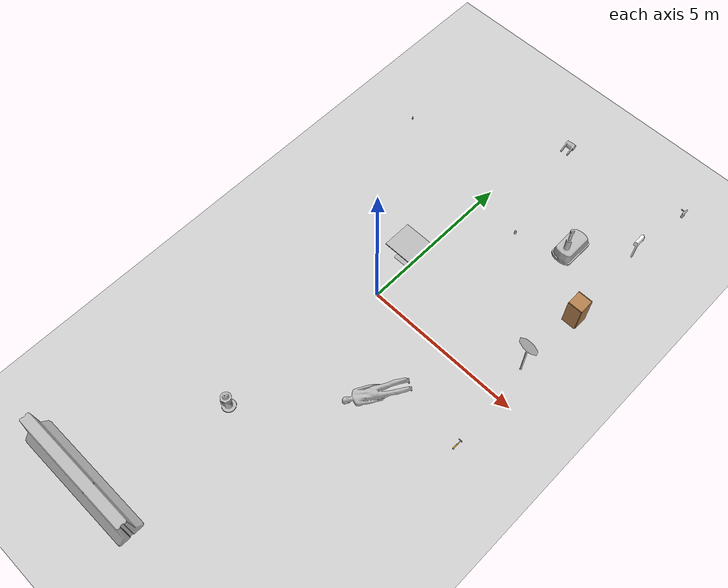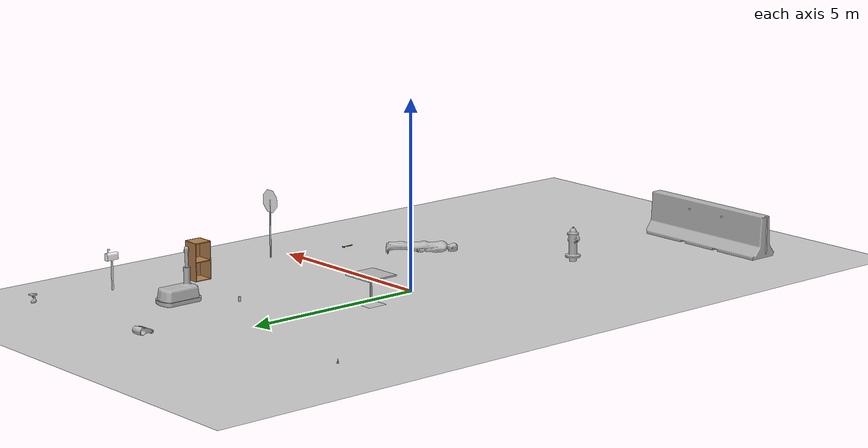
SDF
<sdf version="1.6">
 <world name="default">
  <light name="sun" type="directional">
   <pose>0 0 15 0 -0 0</pose>
   <diffuse>1 1 1 1</diffuse>
   <specular>0.1 0.1 0.1 1</specular>
   <attenuation>
    <range>1000</range>
    <constant>0.9</constant>
    <linear>0.01</linear>
    <quadratic>0.001</quadratic>
   </attenuation>
   <direction>-0.5 0.5 -1</direction>
  </light>
  <model name="ground_plane">
   <static>1</static>
   <link name="link">
    <collision name="collision">
     <geometry><plane><normal>0 0 1</normal><size>100 100</size></plane></geometry>
     <surface><friction><ode><mu>100</mu><mu2>50</mu2></ode></friction></surface>
    </collision>
    <visual name="visual">
     <transparency>1</transparency>
     <cast_shadows>0</cast_shadows>
     <geometry><plane><normal>0 0 1</normal><size>100 100</size></plane></geometry>
     <material>
      <script><uri>file://media/materials/scripts/gazebo.material</uri><name>Gazebo/Grey</name></script>
     </material>
    </visual>
   </link>
  </model>
  <gravity>0 0 -9.8</gravity>
  <magnetic_field>6e-06 2.3e-05 -4.2e-05</magnetic_field>
  <atmosphere type="adiabatic"/>
  <physics name="default_physics" default="0" type="ode">
   <max_step_size>0.001</max_step_size>
   <real_time_factor>1</real_time_factor>
   <real_time_update_rate>1000</real_time_update_rate>
  </physics>
  <scene><ambient>0.4 0.4 0.4 1</ambient><background>0.7 0.7 0.7 1</background><shadows>1</shadows></scene>
  <spherical_coordinates>
   <surface_model>EARTH_WGS84</surface_model>
   <latitude_deg>0</latitude_deg>
   <longitude_deg>0</longitude_deg>
   <elevation>0</elevation>
   <heading_deg>0</heading_deg>
  </spherical_coordinates>
  <model name="cafe_table">
   <static>1</static>
   <link name="link">
    <collision name="surface">
     <pose>0 0 0.755 0 -0 0</pose>
     <geometry><box><size>0.913 0.913 0.04</size></box></geometry>
    </collision>
    <collision name="column">
     <pose>0 0 0.37 0 -0 0</pose>
     <geometry><box><size>0.042 0.042 0.74</size></box></geometry>
    </collision>
    <collision name="base">
     <pose>0 0 0.02 0 -0 0</pose>
     <geometry><box><size>0.56 0.56 0.04</size></box></geometry>
    </collision>
    <visual name="visual">
     <geometry><mesh><uri>model://cafe_table/meshes/cafe_table.dae</uri><scale>1 1 1</scale></mesh></geometry>
    </visual>
   </link>
   <pose>-0.257593 1.54556 0 0 -0 0</pose>
  </model>
  <model name="fire_hydrant">
   <static>1</static>
   <link name="link">
    <collision name="collision">
     <geometry><mesh><uri>model://fire_hydrant/meshes/fire_hydrant.dae</uri><scale>1 1 1</scale></mesh></geometry>
    </collision>
    <visual name="visual">
     <geometry><mesh><uri>model://fire_hydrant/meshes/fire_hydrant.dae</uri><scale>1 1 1</scale></mesh></geometry>
    </visual>
   </link>
   <pose>-0.471273 -5.28042 0 0 -0 0</pose>
  </model>
  <model name="jersey_barrier">
   <static>1</static>
   <link name="link">
    <visual name="visual">
     <geometry>
      <mesh><uri>model://jersey_barrier/meshes/jersey_barrier.dae</uri><scale>1 1 1</scale></mesh>
     </geometry>
    </visual>
    <collision name="upright">
     <pose>0 0 0.5715 0 -0 0</pose>
     <geometry><box><size>4.06542 0.3063 1.143</size></box></geometry>
    </collision>
    <collision name="base">
     <pose>0 0 0.032258 0 -0 0</pose>
     <geometry><box><size>4.06542 0.8107 0.064516</size></box></geometry>
    </collision>
    <collision name="base2">
     <pose>0 0 0.1 0 -0 0</pose>
     <geometry><box><size>4.06542 0.65 0.1</size></box></geometry>
    </collision>
    <collision name="base3">
     <pose>0 0 0.2 0 -0 0</pose>
     <geometry><box><size>4.06542 0.5 0.1</size></box></geometry>
    </collision>
    <collision name="left-angle">
     <pose>0 -0.224 0.2401 0.9 -0 0</pose>
     <geometry><box><size>4.06542 0.5 0.064516</size></box></geometry>
    </collision>
    <collision name="right-angle">
     <pose>0 0.224 0.2401 -0.9 0 0</pose>
     <geometry><box><size>4.06542 0.5 0.064516</size></box></geometry>
    </collision>
   </link>
   <pose>-1.6295 -9.31876 0 0 -0 0</pose>
  </model>
  <model name="person_standing_0">
   <link name="link">
    <inertial>
     <pose>0 -0.1 0.95 0 -0 0</pose>
     <mass>80</mass>
     <inertia><ixx>24.88</ixx><ixy>0</ixy><ixz>0</ixz><iyy>25.73</iyy><iyz>0</iyz><izz>2.48</izz></inertia>
    </inertial>
    <collision name="bottom">
     <pose>0 -0.1 0.01 0 -0 0</pose>
     <geometry><box><size>0.5 0.35 0.02</size></box></geometry>
    </collision>
    <collision name="person">
     <pose>0 0 0.02 0.04 -0 0</pose>
     <geometry><mesh><uri>model://person_standing/meshes/standing.dae</uri><scale>1 1 1</scale></mesh></geometry>
    </collision>
    <visual name="visual">
     <pose>0 0 0.02 0.04 -0 0</pose>
     <geometry><mesh><uri>model://person_standing/meshes/standing.dae</uri><scale>1 1 1</scale></mesh></geometry>
    </visual>
   </link>
   <pose>2.69109 -1.46373 0.465146 1.59085 -0 -0.545982</pose>
  </model>
  <model name="Mailbox">
   <link name="link">
    <collision name="collision">
     <geometry><mesh><uri>model://mailbox/meshes/mailbox.dae</uri><scale>1 1 1</scale></mesh></geometry>
    </collision>
    <visual name="visual">
     <geometry><mesh><uri>model://mailbox/meshes/mailbox.dae</uri><scale>1 1 1</scale></mesh></geometry>
     <material>
      <script>
       <uri>model://mailbox/materials/scripts</uri>
       <uri>model://mailbox/materials/textures</uri>
       <name>Mailbox/Diffuse</name>
      </script>
     </material>
    </visual>
    <inertial>
     <inertia><ixx>1</ixx><ixy>0</ixy><ixz>0</ixz><iyy>1</iyy><iyz>0</iyz><izz>1</izz></inertia>
     <mass>1</mass>
    </inertial>
   </link>
   <pose>4.52359 6.05654 0.1898 5e-06 -2e-06 -1.5e-05</pose>
  </model>
  <model name="drill">
   <link name="link">
    <inertial>
     <pose>-0.00637 -0.008 0.13254 0 -0 0</pose>
     <inertia>
      <ixx>0.0133113</ixx>
      <ixy>-0.00030365</ixy>
      <ixz>-0.00034148</ixz>
      <iyy>0.0115766</iyy>
      <iyz>0.00088073</iyz>
      <izz>0.00378028</izz>
     </inertia>
     <mass>1.50252</mass>
    </inertial>
    <collision name="collision">
     <pose>0 0 -0.09 0 -0 0</pose>
     <geometry>
      <mesh><uri>model://cordless_drill/meshes/cordless_drill.stl</uri><scale>1 1 1</scale></mesh>
     </geometry>
    </collision>
    <visual name="visual">
     <pose>0 0 -0.09 0 -0 0</pose>
     <geometry>
      <mesh><uri>model://cordless_drill/meshes/cordless_drill.dae</uri><scale>1 1 1</scale></mesh>
     </geometry>
    </visual>
   </link>
   <pose>4.78397 8.25899 0.187734 3e-05 6e-06 -0.106853</pose>
  </model>
  <model name="warehouse_robot">
   <static>1</static>
   <link name="link">
    <visual name="visual">
     <geometry><mesh><uri>model://warehouse_robot/meshes/robot.dae</uri><scale>1 1 1</scale></mesh></geometry>
    </visual>
    <collision name="collision_base">
     <pose>0 0 0.20437 0 -0 0</pose>
     <geometry><box><size>0.55508 1.0228 0.40874</size></box></geometry>
    </collision>
    <collision name="collision_bumper">
     <pose>0 0 0.062205 0 -0 0</pose>
     <geometry><box><size>0.67266 1.17126 0.12441</size></box></geometry>
    </collision>
    <collision name="collision_column_large">
     <pose>0 -0.27539 0.43738 0 -0 0</pose>
     <geometry><cylinder><radius>0.08652</radius><length>0.87476</length></cylinder></geometry>
    </collision>
    <collision name="collision_column_small">
     <pose>0 -0.27539 0.70424 0 -0 0</pose>
     <geometry><cylinder><radius>0.04261</radius><length>1.40848</length></cylinder></geometry>
    </collision>
   </link>
   <pose>3.03168 5.09448 0 0 -0 0</pose>
  </model>
  <model name="arm_part">
   <link name="link">
    <inertial>
     <pose>0 -0.12223 0.101835 0 -0 0</pose>
     <mass>0.5</mass>
     <inertia>
      <ixx>0.00950655</ixx>
      <ixy>0</ixy>
      <ixz>0</ixz>
      <iyy>0.00543452</iyy>
      <iyz>0</iyz>
      <izz>0.0114843</izz>
     </inertia>
    </inertial>
    <collision name="collision">
     <pose>0 -0.12223 0.101835 0 -0 0</pose>
     <geometry><box><size>0.29824 0.43206 0.20367</size></box></geometry>
    </collision>
    <visual name="visual">
     <geometry><mesh><uri>model://arm_part/meshes/arm.dae</uri><scale>1 1 1</scale></mesh></geometry>
     <material>
      <script>
       <uri>model://arm_part/materials/scripts</uri>
       <uri>model://arm_part/materials/textures</uri>
       <name>ArmPart/Diffuse</name>
      </script>
     </material>
    </visual>
   </link>
   <pose>0.741201 7.9154 0.189796 -5e-06 1.5e-05 0.060587</pose>
  </model>
  <model name="cabinet">
   <static>1</static>
   <link name="cabinet_bottom_plate">
    <inertial>
     <pose>0 0 -1 0 -0 0</pose>
     <inertia><ixx>2.05</ixx><ixy>0</ixy><ixz>0</ixz><iyy>2.05</iyy><iyz>0</iyz><izz>2.05</izz></inertia>
     <mass>25</mass>
    </inertial>
    <collision name="cabinet_bottom_plate_geom">
     <pose>0 0 0.01 0 -0 0</pose>
     <geometry><box><size>0.45 0.45 0.02</size></box></geometry>
    </collision>
    <visual name="cabinet_bottom_plate_geom_visual">
     <pose>0 0 0.01 0 -0 0</pose>
     <geometry><box><size>0.45 0.45 0.02</size></box></geometry>
     <material>
      <script><uri>file://media/materials/scripts/gazebo.material</uri><name>Gazebo/Wood</name></script>
     </material>
    </visual>
    <collision name="cabinet_bottom_plate_geom_cabinet_back_plate">
     <pose>0.235 0 0.51 0 -0 0</pose>
     <geometry><box><size>0.02 0.45 1.02</size></box></geometry>
    </collision>
    <visual name="cabinet_bottom_plate_geom_cabinet_back_plate_visual">
     <pose>0.235 0 0.51 0 -0 0</pose>
     <geometry><box><size>0.02 0.45 1.02</size></box></geometry>
     <material>
      <script><uri>file://media/materials/scripts/gazebo.material</uri><name>Gazebo/Wood</name></script>
     </material>
    </visual>
    <collision name="cabinet_bottom_plate_geom_cabinet_left_plate">
     <pose>0 0.235 0.51 0 -0 0</pose>
     <geometry><box><size>0.45 0.02 1.02</size></box></geometry>
    </collision>
    <visual name="cabinet_bottom_plate_geom_cabinet_left_plate_visual">
     <pose>0 0.235 0.51 0 -0 0</pose>
     <geometry><box><size>0.45 0.02 1.02</size></box></geometry>
     <material>
      <script><uri>file://media/materials/scripts/gazebo.material</uri><name>Gazebo/Wood</name></script>
     </material>
    </visual>
    <collision name="cabinet_bottom_plate_geom_cabinet_middle_plate">
     <pose>0 0 0.51 0 -0 0</pose>
     <geometry><box><size>0.45 0.45 0.02</size></box></geometry>
    </collision>
    <visual name="cabinet_bottom_plate_geom_cabinet_middle_plate_visual">
     <pose>0 0 0.51 0 -0 0</pose>
     <geometry><box><size>0.45 0.45 0.02</size></box></geometry>
     <material>
      <script><uri>file://media/materials/scripts/gazebo.material</uri><name>Gazebo/Wood</name></script>
     </material>
    </visual>
    <collision name="cabinet_bottom_plate_geom_cabinet_right_plate">
     <pose>0 -0.235 0.51 0 -0 0</pose>
     <geometry><box><size>0.45 0.02 1.02</size></box></geometry>
    </collision>
    <visual name="cabinet_bottom_plate_geom_cabinet_right_plate_visual">
     <pose>0 -0.235 0.51 0 -0 0</pose>
     <geometry><box><size>0.45 0.02 1.02</size></box></geometry>
     <material>
      <script><uri>file://media/materials/scripts/gazebo.material</uri><name>Gazebo/Wood</name></script>
     </material>
    </visual>
    <collision name="cabinet_bottom_plate_geom_cabinet_top_plate">
     <pose>0 0 1.01 0 -0 0</pose>
     <geometry><box><size>0.45 0.45 0.02</size></box></geometry>
    </collision>
    <visual name="cabinet_bottom_plate_geom_cabinet_top_plate_visual">
     <pose>0 0 1.01 0 -0 0</pose>
     <geometry><box><size>0.45 0.45 0.02</size></box></geometry>
     <material>
      <script><uri>file://media/materials/scripts/gazebo.material</uri><name>Gazebo/Wood</name></script>
     </material>
    </visual>
   </link>
   <pose>4.53509 3.36249 0 0 -0 0</pose>
  </model>
  <model name="Stop Sign">
   <link name="link">
    <collision name="collision">
     <geometry><mesh><uri>model://stop_sign/meshes/stop_sign.dae</uri><scale>1 1 1</scale></mesh></geometry>
    </collision>
    <visual name="visual">
     <geometry><mesh><uri>model://stop_sign/meshes/stop_sign.dae</uri><scale>1 1 1</scale></mesh></geometry>
     <material>
      <script>
       <uri>model://stop_sign/materials/scripts</uri>
       <uri>model://stop_sign/materials/textures</uri>
       <name>StopSign/Diffuse</name>
      </script>
     </material>
    </visual>
    <inertial>
     <inertia><ixx>1</ixx><ixy>0</ixy><ixz>0</ixz><iyy>1</iyy><iyz>0</iyz><izz>1</izz></inertia>
     <mass>1</mass>
    </inertial>
   </link>
   <pose>4.5127 1.01768 0.189791 2e-06 -2e-06 -1.6e-05</pose>
  </model>
  <model name="coke_can">
   <link name="link">
    <inertial>
     <mass>0.39</mass>
     <inertia>
      <ixx>0.00055575</ixx>
      <ixy>0</ixy>
      <ixz>0</ixz>
      <iyy>0.00055575</iyy>
      <iyz>0</iyz>
      <izz>0.0001755</izz>
     </inertia>
    </inertial>
    <collision name="collision">
     <pose>0.003937 0.004724 -0.18 0 -0 0</pose>
     <geometry><mesh><uri>model://coke_can/meshes/coke_can.dae</uri><scale>1 1 1</scale></mesh></geometry>
    </collision>
    <visual name="visual">
     <pose>0.003937 0.004724 -0.18 0 -0 0</pose>
     <geometry><mesh><uri>model://coke_can/meshes/coke_can.dae</uri><scale>1 1 1</scale></mesh></geometry>
    </visual>
   </link>
   <pose>1.55523 4.28915 0.187231 -0.011212 0.004019 -0.013779</pose>
  </model>
  <model name="Construction Cone">
   <static>1</static>
   <link name="link">
    <collision name="collision">
     <geometry>
      <mesh><scale>1 1 1</scale><uri>model://construction_cone/meshes/construction_cone.dae</uri></mesh>
     </geometry>
    </collision>
    <visual name="visual">
     <geometry>
      <mesh><scale>1 1 1</scale><uri>model://construction_cone/meshes/construction_cone.dae</uri></mesh>
     </geometry>
    </visual>
   </link>
   <pose>-3.68135 5.41969 0 0 -0 0</pose>
  </model>
  <model name="hammer">
   <static>1</static>
   <link name="link">
    <collision name="collision">
     <geometry><mesh><uri>model://hammer/meshes/hammer.dae</uri><scale>1 1 1</scale></mesh></geometry>
    </collision>
    <visual name="visual">
     <geometry><mesh><uri>model://hammer/meshes/hammer.dae</uri><scale>1 1 1</scale></mesh></geometry>
    </visual>
   </link>
   <pose>4.65952 -1.68446 0 0 -0 0</pose>
  </model>
 </world>
</sdf>
